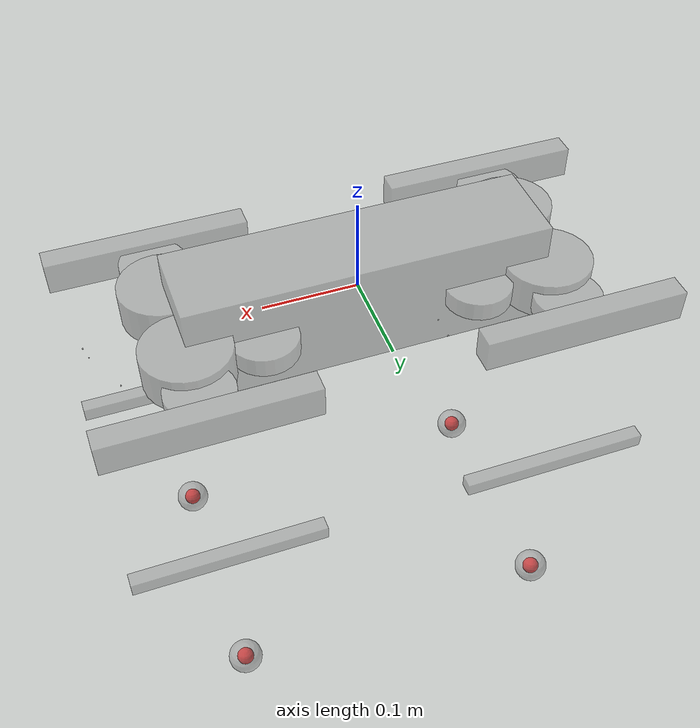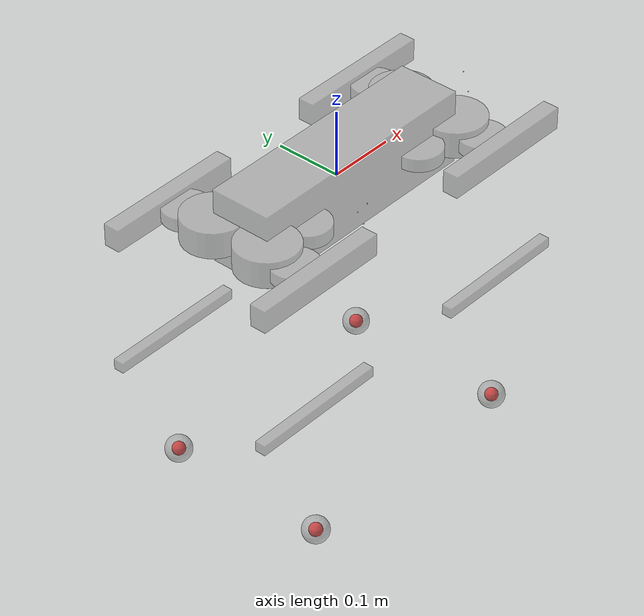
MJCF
<mujoco model="converted">
  <compiler angle="radian" autolimits="true"/>

  <default>
    <geom rgba="0.3 0.3 0.3 1" friction="0.8 0.02 0.01"/>
    <joint damping="1" armature="0.01"/>
  </default>

  <worldbody>
    <body name="world_base" pos="0 0 0" quat="1 0 0 0">
      <body name="trunk" pos="0 0 0" quat="1 0 0 0">
        <inertial pos="0.0223 0.002 -0.0005" mass="5.204" diaginertia="0.0168129 0.0630096 0.0716547"/>
        <geom type="box" size="0.1881 0.04675 0.057" rgba="0.6 0.6 0.6 0.5"/>
        <body name="imu_link" pos="-0.01592 -0.06659 -0.00617" quat="1 0 0 0">
          <inertial pos="0 0 0" mass="0.001" diaginertia="0.0001 0.0001 0.0001"/>
          <geom type="box" size="0.0005 0.0005 0.0005" rgba="0.6 0.6 0.6 0.5"/>
        </body>
        <body name="FR_hip" pos="0.1881 -0.04675 0" quat="1 0 0 0">
          <inertial pos="-0.005657 0.008752 -0.000102" mass="0.591" diaginertia="0.000334008 0.000619101 0.000400576"/>
          <joint name="FR_hip_joint" type="hinge" axis="1 0 0" range="-0.863 0.863"/>
          <geom type="cylinder" size="0.046 0.02" rgba="0.6 0.6 0.6 0.5"/>
          <body name="FR_thigh" pos="0 -0.08 0" quat="1 0 0 0">
            <inertial pos="-0.003342 0.018054 -0.033451" mass="0.92" diaginertia="0.00443176 0.00448567 0.000740309"/>
            <joint name="FR_thigh_joint" type="hinge" axis="0 1 0" range="-0.686 4.501"/>
            <geom type="box" size="0.1065 0.01225 0.017" rgba="0.6 0.6 0.6 0.5"/>
            <body name="FR_calf" pos="0 0 -0.213" quat="1 0 0 0">
              <inertial pos="0.006197 0.001408 -0.116695" mass="0.135862" diaginertia="0.00108879 0.00110043 2.47874e-05"/>
              <joint name="FR_calf_joint" type="hinge" axis="0 1 0" range="-2.818 -0.888"/>
              <geom type="box" size="0.1065 0.008 0.008" rgba="0.6 0.6 0.6 0.5"/>
              <body name="FR_foot" pos="0 0 -0.213" quat="1 0 0 0">
                <inertial pos="0 0 0" mass="0.06" diaginertia="9.6e-06 9.6e-06 9.6e-06"/>
                <geom type="sphere" size="0.02" rgba="0.6 0.6 0.6 0.5"/>
                <site name="FR" pos="0 0 0" size="0.01" rgba="1 0 0 1"/>
              </body>
            </body>
            <body name="FR_calf_rotor" pos="0 0.03235 0" quat="1 0 0 0">
              <inertial pos="0 0 0" mass="0.089" diaginertia="5.9647e-05 0.000111842 5.9647e-05"/>
              <geom type="cylinder" size="0.035 0.01" rgba="0.6 0.6 0.6 0.5"/>
            </body>
          </body>
          <body name="FR_thigh_rotor" pos="0 0.00015 0" quat="1 0 0 0">
            <inertial pos="0 0 0" mass="0.089" diaginertia="5.9647e-05 0.000111842 5.9647e-05"/>
            <geom type="cylinder" size="0.035 0.01" rgba="0.6 0.6 0.6 0.5"/>
          </body>
        </body>
        <body name="FR_hip_rotor" pos="0.11215 -0.04675 0" quat="1 0 0 0">
          <inertial pos="0 0 0" mass="0.089" diaginertia="0.000111842 5.9647e-05 5.9647e-05"/>
          <geom type="cylinder" size="0.035 0.01" rgba="0.6 0.6 0.6 0.5"/>
        </body>
        <body name="FL_hip" pos="0.1881 0.04675 0" quat="1 0 0 0">
          <inertial pos="-0.005657 -0.008752 -0.000102" mass="0.591" diaginertia="0.000334008 0.000619101 0.000400576"/>
          <joint name="FL_hip_joint" type="hinge" axis="1 0 0" range="-0.863 0.863"/>
          <geom type="cylinder" size="0.046 0.02" rgba="0.6 0.6 0.6 0.5"/>
          <body name="FL_thigh" pos="0 0.08 0" quat="1 0 0 0">
            <inertial pos="-0.003342 -0.018054 -0.033451" mass="0.92" diaginertia="0.00443176 0.00448567 0.000740309"/>
            <joint name="FL_thigh_joint" type="hinge" axis="0 1 0" range="-0.686 4.501"/>
            <geom type="box" size="0.1065 0.01225 0.017" rgba="0.6 0.6 0.6 0.5"/>
            <body name="FL_calf" pos="0 0 -0.213" quat="1 0 0 0">
              <inertial pos="0.006197 0.001408 -0.116695" mass="0.135862" diaginertia="0.00108879 0.00110043 2.47874e-05"/>
              <joint name="FL_calf_joint" type="hinge" axis="0 1 0" range="-2.818 -0.888"/>
              <geom type="box" size="0.1065 0.008 0.008" rgba="0.6 0.6 0.6 0.5"/>
              <body name="FL_foot" pos="0 0 -0.213" quat="1 0 0 0">
                <inertial pos="0 0 0" mass="0.06" diaginertia="9.6e-06 9.6e-06 9.6e-06"/>
                <geom type="sphere" size="0.02" rgba="0.6 0.6 0.6 0.5"/>
                <site name="FL" pos="0 0 0" size="0.01" rgba="1 0 0 1"/>
              </body>
            </body>
            <body name="FL_calf_rotor" pos="0 -0.03235 0" quat="1 0 0 0">
              <inertial pos="0 0 0" mass="0.089" diaginertia="5.9647e-05 0.000111842 5.9647e-05"/>
              <geom type="cylinder" size="0.035 0.01" rgba="0.6 0.6 0.6 0.5"/>
            </body>
          </body>
          <body name="FL_thigh_rotor" pos="0 -0.00015 0" quat="1 0 0 0">
            <inertial pos="0 0 0" mass="0.089" diaginertia="5.9647e-05 0.000111842 5.9647e-05"/>
            <geom type="cylinder" size="0.035 0.01" rgba="0.6 0.6 0.6 0.5"/>
          </body>
        </body>
        <body name="FL_hip_rotor" pos="0.11215 0.04675 0" quat="1 0 0 0">
          <inertial pos="0 0 0" mass="0.089" diaginertia="0.000111842 5.9647e-05 5.9647e-05"/>
          <geom type="cylinder" size="0.035 0.01" rgba="0.6 0.6 0.6 0.5"/>
        </body>
        <body name="RR_hip" pos="-0.1881 -0.04675 0" quat="1 0 0 0">
          <inertial pos="0.005657 0.008752 -0.000102" mass="0.591" diaginertia="0.000334008 0.000619101 0.000400576"/>
          <joint name="RR_hip_joint" type="hinge" axis="1 0 0" range="-0.863 0.863"/>
          <geom type="cylinder" size="0.046 0.02" rgba="0.6 0.6 0.6 0.5"/>
          <body name="RR_thigh" pos="0 -0.08 0" quat="1 0 0 0">
            <inertial pos="-0.003342 0.018054 -0.033451" mass="0.92" diaginertia="0.00443176 0.00448567 0.000740309"/>
            <joint name="RR_thigh_joint" type="hinge" axis="0 1 0" range="-0.686 4.501"/>
            <geom type="box" size="0.1065 0.01225 0.017" rgba="0.6 0.6 0.6 0.5"/>
            <body name="RR_calf" pos="0 0 -0.213" quat="1 0 0 0">
              <inertial pos="0.006197 0.001408 -0.116695" mass="0.135862" diaginertia="0.00108879 0.00110043 2.47874e-05"/>
              <joint name="RR_calf_joint" type="hinge" axis="0 1 0" range="-2.818 -0.888"/>
              <geom type="box" size="0.1065 0.008 0.008" rgba="0.6 0.6 0.6 0.5"/>
              <body name="RR_foot" pos="0 0 -0.213" quat="1 0 0 0">
                <inertial pos="0 0 0" mass="0.06" diaginertia="9.6e-06 9.6e-06 9.6e-06"/>
                <geom type="sphere" size="0.02" rgba="0.6 0.6 0.6 0.5"/>
                <site name="RR" pos="0 0 0" size="0.01" rgba="1 0 0 1"/>
              </body>
            </body>
            <body name="RR_calf_rotor" pos="0 0.03235 0" quat="1 0 0 0">
              <inertial pos="0 0 0" mass="0.089" diaginertia="5.9647e-05 0.000111842 5.9647e-05"/>
              <geom type="cylinder" size="0.035 0.01" rgba="0.6 0.6 0.6 0.5"/>
            </body>
          </body>
          <body name="RR_thigh_rotor" pos="0 0.00015 0" quat="1 0 0 0">
            <inertial pos="0 0 0" mass="0.089" diaginertia="5.9647e-05 0.000111842 5.9647e-05"/>
            <geom type="cylinder" size="0.035 0.01" rgba="0.6 0.6 0.6 0.5"/>
          </body>
        </body>
        <body name="RR_hip_rotor" pos="-0.11215 -0.04675 0" quat="1 0 0 0">
          <inertial pos="0 0 0" mass="0.089" diaginertia="0.000111842 5.9647e-05 5.9647e-05"/>
          <geom type="cylinder" size="0.035 0.01" rgba="0.6 0.6 0.6 0.5"/>
        </body>
        <body name="RL_hip" pos="-0.1881 0.04675 0" quat="1 0 0 0">
          <inertial pos="0.005657 -0.008752 -0.000102" mass="0.591" diaginertia="0.000334008 0.000619101 0.000400576"/>
          <joint name="RL_hip_joint" type="hinge" axis="1 0 0" range="-0.863 0.863"/>
          <geom type="cylinder" size="0.046 0.02" rgba="0.6 0.6 0.6 0.5"/>
          <body name="RL_thigh" pos="0 0.08 0" quat="1 0 0 0">
            <inertial pos="-0.003342 -0.018054 -0.033451" mass="0.92" diaginertia="0.00443176 0.00448567 0.000740309"/>
            <joint name="RL_thigh_joint" type="hinge" axis="0 1 0" range="-0.686 4.501"/>
            <geom type="box" size="0.1065 0.01225 0.017" rgba="0.6 0.6 0.6 0.5"/>
            <body name="RL_calf" pos="0 0 -0.213" quat="1 0 0 0">
              <inertial pos="0.006197 0.001408 -0.116695" mass="0.135862" diaginertia="0.00108879 0.00110043 2.47874e-05"/>
              <joint name="RL_calf_joint" type="hinge" axis="0 1 0" range="-2.818 -0.888"/>
              <geom type="box" size="0.1065 0.008 0.008" rgba="0.6 0.6 0.6 0.5"/>
              <body name="RL_foot" pos="0 0 -0.213" quat="1 0 0 0">
                <inertial pos="0 0 0" mass="0.06" diaginertia="9.6e-06 9.6e-06 9.6e-06"/>
                <geom type="sphere" size="0.02" rgba="0.6 0.6 0.6 0.5"/>
                <site name="RL" pos="0 0 0" size="0.01" rgba="1 0 0 1"/>
              </body>
            </body>
            <body name="RL_calf_rotor" pos="0 -0.03235 0" quat="1 0 0 0">
              <inertial pos="0 0 0" mass="0.089" diaginertia="5.9647e-05 0.000111842 5.9647e-05"/>
              <geom type="cylinder" size="0.035 0.01" rgba="0.6 0.6 0.6 0.5"/>
            </body>
          </body>
          <body name="RL_thigh_rotor" pos="0 -0.00015 0" quat="1 0 0 0">
            <inertial pos="0 0 0" mass="0.089" diaginertia="5.9647e-05 0.000111842 5.9647e-05"/>
            <geom type="cylinder" size="0.035 0.01" rgba="0.6 0.6 0.6 0.5"/>
          </body>
        </body>
        <body name="RL_hip_rotor" pos="-0.11215 0.04675 0" quat="1 0 0 0">
          <inertial pos="0 0 0" mass="0.089" diaginertia="0.000111842 5.9647e-05 5.9647e-05"/>
          <geom type="cylinder" size="0.035 0.01" rgba="0.6 0.6 0.6 0.5"/>
        </body>
        <body name="camera_face" pos="0.2785 0.0125 0.0167" quat="6.12323e-17 1 0 0">
          <inertial pos="0 0 0" mass="1e-05" diaginertia="1e-06 1e-06 1e-06"/>
          <geom type="box" size="0.0005 0.0005 0.0005" rgba="0.6 0.6 0.6 0.5"/>
          <body name="camera_optical_face" pos="0 0 0" quat="0.5 -0.5 0.5 -0.5">
          </body>
        </body>
        <body name="camera_chin" pos="0.2522 0.0125 -0.0436" quat="4.32978e-17 0.707107 4.32978e-17 -0.707107">
          <inertial pos="0 0 0" mass="1e-05" diaginertia="1e-06 1e-06 1e-06"/>
          <geom type="box" size="0.0005 0.0005 0.0005" rgba="0.6 0.6 0.6 0.5"/>
          <body name="camera_optical_chin" pos="0 0 0" quat="0.5 -0.5 0.5 -0.5">
          </body>
        </body>
        <body name="camera_left" pos="-0.066 0.082 -0.0176" quat="0.0922962 0.701057 0.701057 -0.0922962">
          <inertial pos="0 0 0" mass="1e-05" diaginertia="1e-06 1e-06 1e-06"/>
          <geom type="box" size="0.0005 0.0005 0.0005" rgba="0.6 0.6 0.6 0.5"/>
          <body name="camera_optical_left" pos="0 0 0" quat="0.5 -0.5 0.5 -0.5">
          </body>
          <body name="camera_laserscan_link_left" pos="0 0 0" quat="0.991445 0 0.130526 0">
          </body>
        </body>
        <body name="camera_right" pos="-0.041 -0.082 -0.0176" quat="-0.0922962 0.701057 -0.701057 -0.0922962">
          <inertial pos="0 0 0" mass="1e-05" diaginertia="1e-06 1e-06 1e-06"/>
          <geom type="box" size="0.0005 0.0005 0.0005" rgba="0.6 0.6 0.6 0.5"/>
          <body name="camera_optical_right" pos="0 0 0" quat="0.5 -0.5 0.5 -0.5">
          </body>
          <body name="camera_laserscan_link_right" pos="0 0 0" quat="0.991445 0 0.130526 0">
          </body>
        </body>
        <body name="camera_rearDown" pos="-0.0825 0.0125 -0.04365" quat="4.32978e-17 0.707107 4.32978e-17 -0.707107">
          <inertial pos="0 0 0" mass="1e-05" diaginertia="1e-06 1e-06 1e-06"/>
          <geom type="box" size="0.0005 0.0005 0.0005" rgba="0.6 0.6 0.6 0.5"/>
          <body name="camera_optical_rearDown" pos="0 0 0" quat="0.5 -0.5 0.5 -0.5">
          </body>
        </body>
        <body name="ultraSound_left" pos="-0.0535 0.0826 0.00868" quat="0.701057 -0.0922962 0.0922962 0.701057">
          <inertial pos="0 0 0" mass="1e-05" diaginertia="1e-06 1e-06 1e-06"/>
          <geom type="box" size="0.0005 0.0005 0.0005" rgba="0.6 0.6 0.6 0.5"/>
        </body>
        <body name="ultraSound_right" pos="-0.0535 -0.0826 0.00868" quat="0.701057 0.0922962 0.0922962 -0.701057">
          <inertial pos="0 0 0" mass="1e-05" diaginertia="1e-06 1e-06 1e-06"/>
          <geom type="box" size="0.0005 0.0005 0.0005" rgba="0.6 0.6 0.6 0.5"/>
        </body>
        <body name="ultraSound_face" pos="0.2747 0 -0.0088" quat="1 0 0 0">
          <inertial pos="0 0 0" mass="1e-05" diaginertia="1e-06 1e-06 1e-06"/>
          <geom type="box" size="0.0005 0.0005 0.0005" rgba="0.6 0.6 0.6 0.5"/>
        </body>
      </body>
    </body>
  </worldbody>

  <actuator>
    <position name="FR_hip_joint" joint="FR_hip_joint"/>
    <position name="FR_thigh_joint" joint="FR_thigh_joint"/>
    <position name="FR_calf_joint" joint="FR_calf_joint"/>
    <position name="FL_hip_joint" joint="FL_hip_joint"/>
    <position name="FL_thigh_joint" joint="FL_thigh_joint"/>
    <position name="FL_calf_joint" joint="FL_calf_joint"/>
    <position name="RR_hip_joint" joint="RR_hip_joint"/>
    <position name="RR_thigh_joint" joint="RR_thigh_joint"/>
    <position name="RR_calf_joint" joint="RR_calf_joint"/>
    <position name="RL_hip_joint" joint="RL_hip_joint"/>
    <position name="RL_thigh_joint" joint="RL_thigh_joint"/>
    <position name="RL_calf_joint" joint="RL_calf_joint"/>
  </actuator>
</mujoco>
